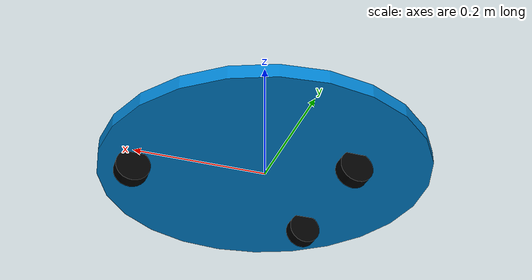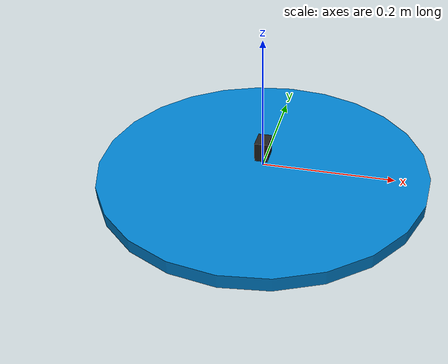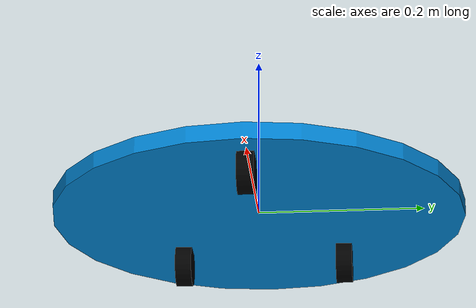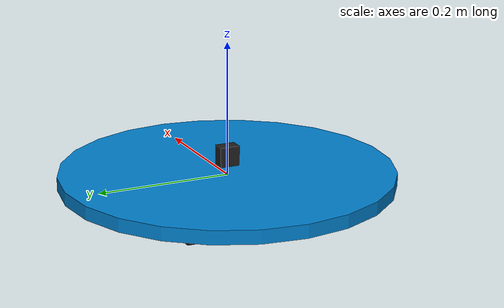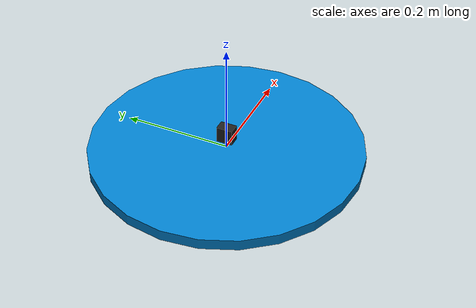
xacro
<?xml version="1.0"?>
<robot name="smartcar" xmlns:xacro="http://www.ros.org/wiki/xacro">
	<link name="base_link">
		<visual>
			<geometry>
				<cylinder length="0.02" radius="0.25" />
			</geometry>
			<origin rpy="0 0 0" xyz="0 0 0" />
			<material name="blue">
				<color rgba="0 .5 .8 1" />
			</material>
		</visual>
		<collision>
			<geometry>
				<cylinder length="0.02" radius="0.25" />
			</geometry>
		</collision>
		<inertial>
			<mass value="1.0" />
			<inertia ixx="0.0054" iyy="0.0073" izz="0.0023" ixy="0" ixz="0" iyz="0" />
		</inertial>
	</link>
	<link name="dummy">
	</link>
	<joint name="dummy_joint" type="fixed">
		<parent link="dummy" />
		<child link="base_link" />
	</joint>
	<gazebo reference="base_link">
		<material>
			Gazebo/Blue
		</material>
	</gazebo>

    	<xacro:macro name="cylinder_inertial_matrix" params="m r h">
        	<inertial>
            	<mass value="${m}" />
            	<inertia ixx="${m*(3*r*r+h*h)/12}" ixy = "0" ixz = "0"
                	iyy="${m*(3*r*r+h*h)/12}" iyz = "0"
                	izz="${m*r*r/2}" />
        	</inertial>
    	</xacro:macro>

	<xacro:macro name="wheel" params="prefix x y z">
		<link name="${prefix}_wheel">
			<visual>
				<geometry>
					<cylinder length=".02" radius="0.025" />
				</geometry>
				<material name="black">
					<color rgba="0 0 0 1" />
				</material>
			</visual>
			<collision>
				<geometry>
					<cylinder length=".02" radius="0.025" />
				</geometry>
			</collision>
			<xacro:cylinder_inertial_matrix m="1.0" r="0.025" h="0.02" />
		</link>

		<joint name="${prefix}_wheel_joint" type="continuous">
			<axis xyz="0 0 1" />
			<parent link="base_link" />
			<child link="${prefix}_wheel" />
			<origin rpy="1.57075 0 0" xyz="${x} ${y} ${z}" />
			<limit effort="100" velocity="100" />
			<joint_properties damping="0.0" friction="0.0" />
		</joint>

		<gazebo reference="${prefix}_wheel">
			<material>
				Gazebo/Black
			</material>
		</gazebo>
	</xacro:macro>

	<xacro:wheel prefix="front" x="0.2" y="0" z="-0.03" />
	<xacro:wheel prefix="right_back" x="-0.1" y="0.1" z="-0.03"/>
	<xacro:wheel prefix="left_back" x="-0.1" y="-0.1" z="-0.03" />

	<gazebo>
		<plugin name="differential_drive_controller" filename="libgazebo_ros_diff_drive.so">
			<rosDebugLevel>
				na
			</rosDebugLevel>
			<commandTopic>
				cmd_vel
			</commandTopic>
			<odometryTopic>
				odom
			</odometryTopic>
			<odometryFrame>
				odom
			</odometryFrame>
			<publishWheelTF>
				false
			</publishWheelTF>
			<publishOdomTF>
				true
			</publishOdomTF>
			<wheelAcceleration>
				0
			</wheelAcceleration>
			<wheelTorque>
				5
			</wheelTorque>
			<updateRate>
				100
			</updateRate>
			<odometrySource>
				1
			</odometrySource>
			<publishTf>
				1
			</publishTf>
			<leftJoint>
				left_back_wheel_joint
			</leftJoint>
			<rightJoint>
				right_back_wheel_joint
			</rightJoint>
			<robotBaseFrame>
				base_link
			</robotBaseFrame>
			<wheelSeparation>
				0.14
			</wheelSeparation>
			<wheelDiameter>
				0.05
			</wheelDiameter>
			<legacyMode>
				true
			</legacyMode>
			<publishWheelJointState>
				true
			</publishWheelJointState>
		</plugin>
	</gazebo>
	<joint name="laser_joint" type="fixed">
		<axis xyz="0 1 0" />
		<origin xyz="0 0 0.030" rpy="0 0 0" />
		<parent link="base_link" />
		<child link="laser_link" />
	</joint>
	<link name="laser_link">
		<collision>
			<origin xyz="0 0 0" rpy="0 0 0" />
			<geometry>
				<box size="0.02 .03 .03" />
			</geometry>
		</collision>
		<visual>
			<origin xyz="0 0 0" rpy="0 0 0" />
			<geometry>
				<box size="0.02 .03 .03" />
			</geometry>
		</visual>
		<inertial>
			<mass value="0.1" />
			<inertia ixx="0.000010833" iyy="0.000010833" izz="0.000015" ixy="0" ixz="0" iyz="0" />
		</inertial>
	</link>
	<gazebo reference="laser_link">
		<material>
			Gazebo/Black
		</material>
	</gazebo>
	<gazebo reference="laser_link">
		<sensor type="ray" name="head_velodyne_sensor">
			<pose>
				0 0 0 0 0 0
			</pose>
			<visualize>
				true
			</visualize>
			<update_rate>
				40
			</update_rate>
			<ray>
				<scan>
					<horizontal>
						<samples>
							40
						</samples>
						<resolution>
							1
						</resolution>
						<min_angle>
							0
						</min_angle>
						<max_angle>
							1.57
						</max_angle>
					</horizontal>
					<vertical>
						<samples>
							40
						</samples>
						<resolution>
							1
						</resolution>
						<min_angle>
							-${15.0*3.14125/180.0}
						</min_angle>
						<max_angle>
							${15.0*3.14125/180.0}
						</max_angle>
					</vertical>
				</scan>
				<range>
					<min>
						0.10
					</min>
					<max>
						60.0
					</max>
					<resolution>
						0.02
					</resolution>
				</range>
			</ray>
			<plugin name="gazebo_ros_head_velodyne_controller" filename="libgazebo_ros_velodyne_laser.so">
				<frameName>
					laser_link
				</frameName>
				<topicName>
					velodyne_pointcloud
				</topicName>
			</plugin>
		</sensor>
	</gazebo>
</robot>
